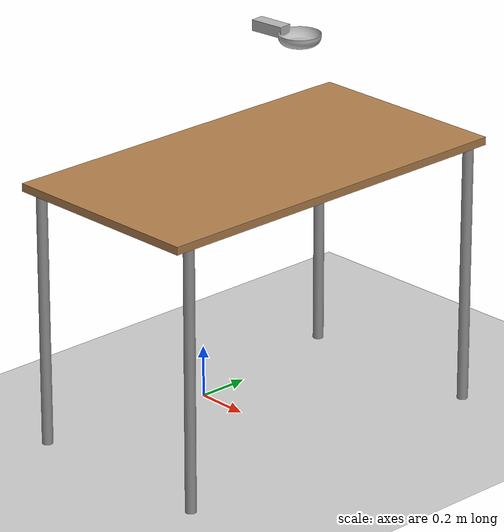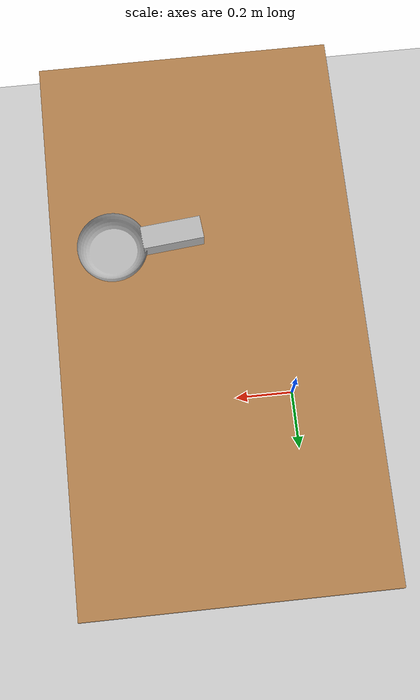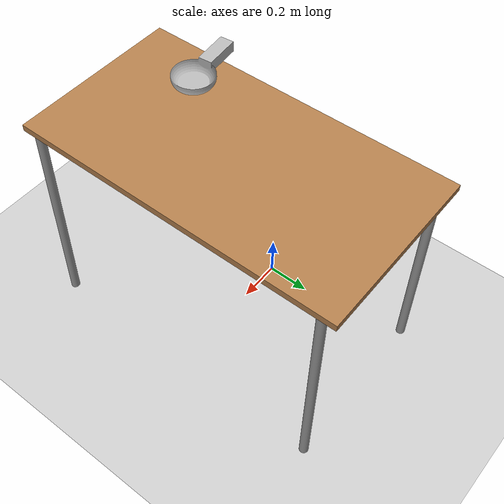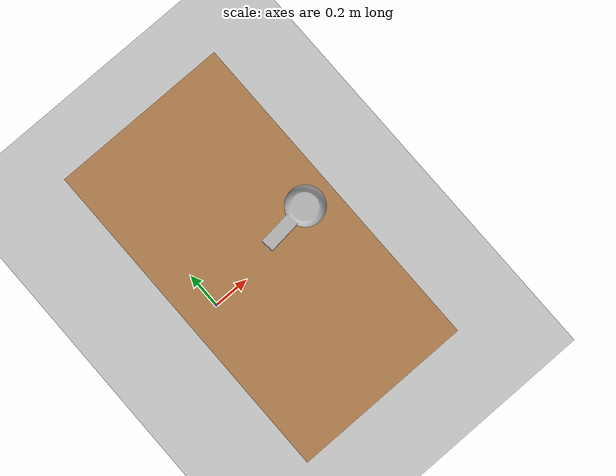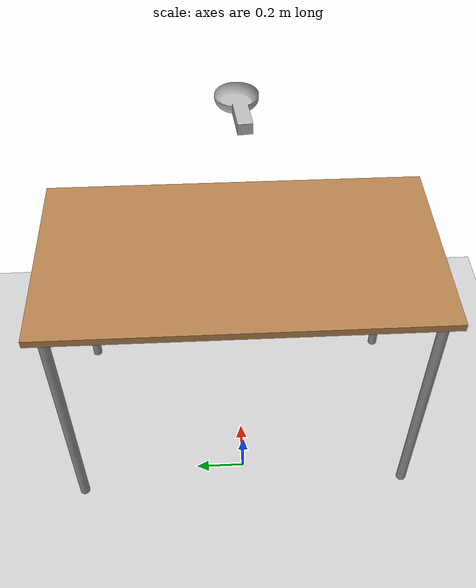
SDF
<?xml version="1.0" ?>
<sdf version="1.6">
  <world name="CRANE-X7 with Table">
    <scene>
      <shadows>0</shadows>
    </scene>

    <include>
      <uri>model://sun</uri>
    </include>

    <model name="table">
      <include>
        <uri>model://table</uri>
      </include>

      <!-- X7を机の端に配置するため、机を移動、回転する -->
      <pose>0.29 0 0 0 0 1.5708</pose>
    </model>
    <model name='flypan'>
      <frame name='flypan::__model__' attached_to='flypan::link'>
        <pose relative_to='__model__'>0 0 0.5 0 -0 0</pose>
      </frame>
      <link name='flypan::link'>
        <inertial>
          <mass>0.02</mass>
          <inertia>
            <ixx>0.000115940141</ixx>
            <ixy>0</ixy>
            <ixz>0</ixz>
            <iyy>0.000019848418</iyy>
            <iyz>-0.000013728609</iyz>
            <izz>0.000126593248</izz>
          </inertia>
          <pose>0 0 0 0 -0 0</pose>
        </inertial>
        <collision name='collision'>
          <geometry>
            <mesh>
              <uri>model://flypan/flypan_50x40.dae</uri>
            </mesh>
          </geometry>
          <max_contacts>10</max_contacts>
          <surface>
            <contact>
              <ode>
                <kp>10000</kp>
                <kd>10</kd>
              </ode>
            </contact>
            <bounce/>
            <friction>
              <ode>
                <mu>1.0</mu>
                <mu2>1.0</mu2>
              </ode>
              <torsional>
                <ode/>
              </torsional>
              <ode/>
            </friction>
          </surface>
        </collision>
        <visual name='visual'>
          <geometry>
            <mesh>
              <uri>model://flypan/flypan_50x40.dae</uri>
            </mesh>
          </geometry>
        </visual>
        <pose relative_to='flypan::__model__'>0 0 0 0 -0 0</pose>
        <self_collide>0</self_collide>
        <enable_wind>0</enable_wind>
        <kinematic>0</kinematic>
      </link>
      <pose>0.5 0 1 0 0 1.67</pose>
    </model>

    <model name="ground_plane">
      <include>
        <uri>model://ground_plane</uri>
      </include>

      <joint name='ground_joint' type='fixed'>
        <parent>ground_plane::link</parent>
        <child>table::link</child>
      </joint>
    </model>
  </world>
</sdf>

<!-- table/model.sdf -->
<sdf version="1.5">
  <model name="table">
    <static>true</static>
    <link name="link">
      <collision name="surface">
        <pose>0 0 1.0 0 0 0</pose>
        <geometry>
          <box>
            <size>1.5 0.8 0.03</size>
          </box>
        </geometry>
        <surface>
          <friction>
            <ode>
              <mu>0.6</mu>
              <mu2>0.6</mu2>
            </ode>
          </friction>
        </surface>
      </collision>
      <visual name="visual1">
        <pose>0 0 1.0 0 0 0</pose>
        <geometry>
          <box>
            <size>1.5 0.8 0.03</size>
          </box>
        </geometry>
        <material>
          <script>
            <uri>model://media/materials/scripts/gazebo.material</uri>
            <name>Gazebo/Wood</name>
          </script>
        </material>
      </visual>
      <collision name="front_left_leg">
        <pose>0.68 0.38 0.5 0 0 0</pose>
        <geometry>
          <cylinder>
            <radius>0.02</radius>
            <length>1.0</length>
          </cylinder>
        </geometry>
      </collision>
      <visual name="front_left_leg">
        <pose>0.68 0.38 0.5 0 0 0</pose>
        <geometry>
          <cylinder>
            <radius>0.02</radius>
            <length>1.0</length>
          </cylinder>
        </geometry>
        <material>
          <script>
            <uri>model://media/materials/scripts/gazebo.material</uri>
            <name>Gazebo/Grey</name>
          </script>
        </material>
      </visual>
      <collision name="front_right_leg">
        <pose>0.68 -0.38 0.5 0 0 0</pose>
        <geometry>
          <cylinder>
            <radius>0.02</radius>
            <length>1.0</length>
          </cylinder>
        </geometry>
      </collision>
      <visual name="front_right_leg">
        <pose>0.68 -0.38 0.5 0 0 0</pose>
        <geometry>
          <cylinder>
            <radius>0.02</radius>
            <length>1.0</length>
          </cylinder>
        </geometry>
        <material>
          <script>
            <uri>model://media/materials/scripts/gazebo.material</uri>
            <name>Gazebo/Grey</name>
          </script>
        </material>
      </visual>
      <collision name="back_right_leg">
        <pose>-0.68 -0.38 0.5 0 0 0</pose>
        <geometry>
          <cylinder>
            <radius>0.02</radius>
            <length>1.0</length>
          </cylinder>
        </geometry>
      </collision>
      <visual name="back_right_leg">
        <pose>-0.68 -0.38 0.5 0 0 0</pose>
        <geometry>
          <cylinder>
            <radius>0.02</radius>
            <length>1.0</length>
          </cylinder>
        </geometry>
        <material>
          <script>
            <uri>model://media/materials/scripts/gazebo.material</uri>
            <name>Gazebo/Grey</name>
          </script>
        </material>
      </visual>
      <collision name="back_left_leg">
        <pose>-0.68 0.38 0.5 0 0 0</pose>
        <geometry>
          <cylinder>
            <radius>0.02</radius>
            <length>1.0</length>
          </cylinder>
        </geometry>
      </collision>
      <visual name="back_left_leg">
        <pose>-0.68 0.38 0.5 0 0 0</pose>
        <geometry>
          <cylinder>
            <radius>0.02</radius>
            <length>1.0</length>
          </cylinder>
        </geometry>
        <material>
          <script>
            <uri>model://media/materials/scripts/gazebo.material</uri>
            <name>Gazebo/Grey</name>
          </script>
        </material>
      </visual>
    </link>
  </model>
</sdf>
